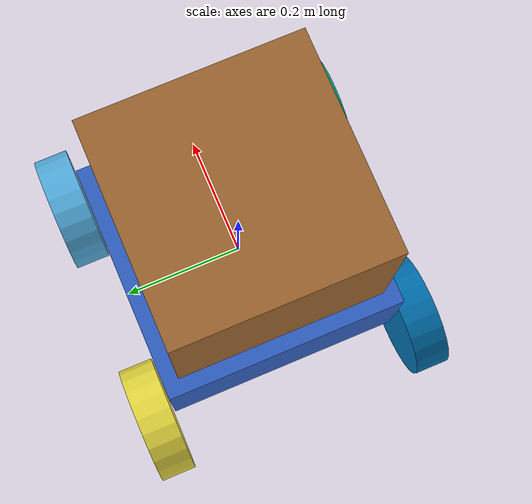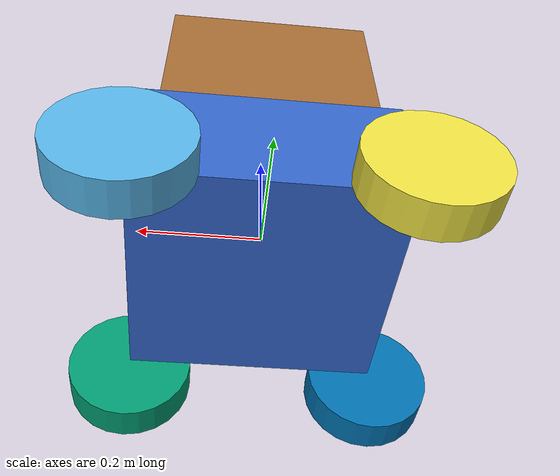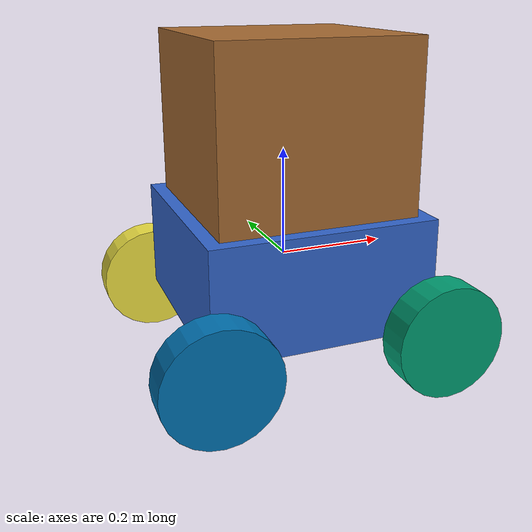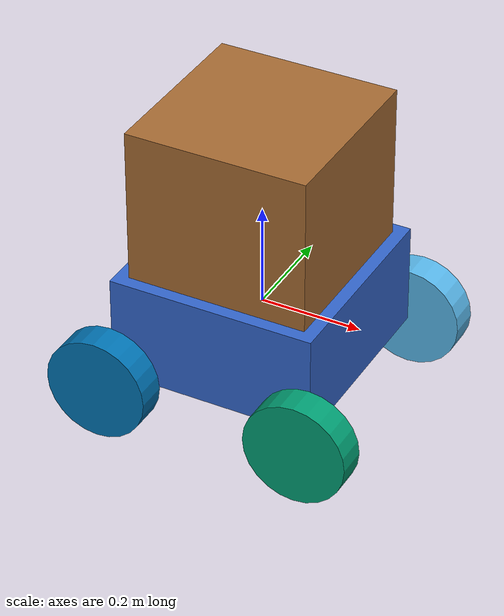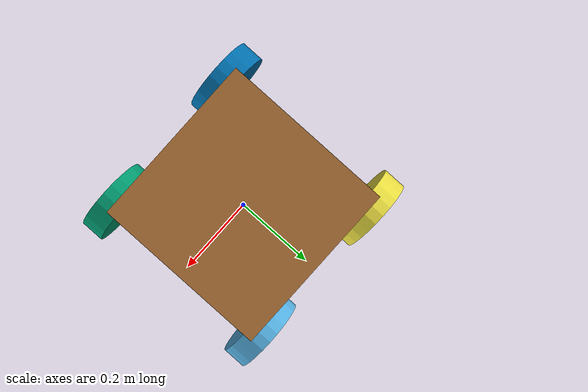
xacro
<?xml version="1.0"?>
<robot xmlns:xacro="http://www.ros.org/wiki/xacro" name="aplc_with_cargo">
  <xacro:include filename="aplc.urdf.xacro"/>
  <xacro:include filename="cargo_crate_macro.xacro"/>
  <!-- Override with the measured combined mass of the crate and payload (kg). -->
  <xacro:arg name="cargo_mass" default="1.0"/>
  <xacro:cargo_crate parent="base_link" xyz="0 0 ${height / 2}"
                     mass="$(arg cargo_mass)"/>
</robot>

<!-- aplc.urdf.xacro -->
<robot xmlns:xacro="http://www.ros.org/wiki/xacro"
       name="aplc">

  <xacro:property name="inch" value="0.0254"/>
  <xacro:property name="length" value="${16 * inch}"/>
  <xacro:property name="width" value="${16 * inch}"/>
  <xacro:property name="overall_height" value="${12 * inch}"/>
  <xacro:property name="wheel_radius" value="${4 * inch}"/>
  <!-- Wheel thickness and masses retained until measured values are available. -->
  <xacro:property name="wheel_width" value="0.06"/>
  <xacro:property name="chassis_mass" value="20.0"/>
  <xacro:property name="wheel_mass" value="1.0"/>
  <xacro:property name="wheel_gap" value="0.005"/>
  <xacro:property name="overall_width" value="${width + 2 * (wheel_width + wheel_gap)}"/>
  <!-- Axles level with chassis bottom: 4-inch ground clearance.
       base_link remains at the center of the chassis. -->
  <xacro:property name="height" value="${overall_height - wheel_radius}"/>
  <xacro:property name="wheel_x" value="${length / 2}"/>
  <xacro:property name="wheel_y" value="${(overall_width - wheel_width) / 2}"/>
  <xacro:property name="wheel_z" value="${-height / 2}"/>

  <!-- Main chassis -->
  <link name="base_link">
    <visual>
      <geometry>
        <box size="${length} ${width} ${height}"/>
      </geometry>
      <material name="blue">
        <color rgba="0.2 0.4 0.8 1"/>
      </material>
    </visual>

    <collision>
      <geometry>
        <box size="${length} ${width} ${height}"/>
      </geometry>
    </collision>

    <inertial>
      <mass value="${chassis_mass}"/>
      <inertia ixx="${chassis_mass * (width**2 + height**2) / 12}" ixy="0" ixz="0"
               iyy="${chassis_mass * (length**2 + height**2) / 12}" iyz="0"
               izz="${chassis_mass * (length**2 + width**2) / 12}"/>
    </inertial>
  </link>

  <!-- Reusable wheel definition -->
  <xacro:macro name="wheel" params="name x y">
    <link name="${name}_link">
      <visual>
        <origin rpy="${pi/2} 0 0"/>
        <geometry>
          <cylinder radius="${wheel_radius}"
                    length="${wheel_width}"/>
        </geometry>
      </visual>
      <collision>
        <origin rpy="${pi/2} 0 0"/>
        <geometry>
          <cylinder radius="${wheel_radius}"
                    length="${wheel_width}"/>
        </geometry>
      </collision>
      <inertial>
        <mass value="${wheel_mass}"/>
        <inertia ixx="${wheel_mass * (3 * wheel_radius**2 + wheel_width**2) / 12}" ixy="0" ixz="0"
                 iyy="${wheel_mass * wheel_radius**2 / 2}" iyz="0"
                 izz="${wheel_mass * (3 * wheel_radius**2 + wheel_width**2) / 12}"/>
      </inertial>
    </link>

    <joint name="${name}_joint" type="continuous">
      <parent link="base_link"/>
      <child link="${name}_link"/>
      <origin xyz="${x} ${y} ${wheel_z}"/>
      <axis xyz="0 1 0"/>
      <limit effort="10" velocity="20"/>
    </joint>
  </xacro:macro>

  <!-- Four wheels -->
  <xacro:wheel name="front_left"  x="${wheel_x}"  y="${wheel_y}"/>
  <xacro:wheel name="front_right" x="${wheel_x}"  y="${-wheel_y}"/>
  <xacro:wheel name="rear_left"   x="${-wheel_x}" y="${wheel_y}"/>
  <xacro:wheel name="rear_right"  x="${-wheel_x}" y="${-wheel_y}"/>

</robot>

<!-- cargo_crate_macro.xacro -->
<robot xmlns:xacro="http://www.ros.org/wiki/xacro" name="cargo_crate">
  <xacro:macro name="cargo_crate"
               params="parent xyz:='0 0 0' name:=cargo_crate mass:=1.0 crate_length:=0.3556 crate_width:=0.3556 crate_height:=0.3048">
    <link name="${name}_link">
      <visual>
        <origin xyz="0 0 ${crate_height / 2}"/>
        <geometry>
          <box size="${crate_length} ${crate_width} ${crate_height}"/>
        </geometry>
        <material name="${name}_brown">
          <color rgba="0.65 0.42 0.20 1"/>
        </material>
      </visual>
      <collision>
        <origin xyz="0 0 ${crate_height / 2}"/>
        <geometry>
          <box size="${crate_length} ${crate_width} ${crate_height}"/>
        </geometry>
      </collision>
      <inertial>
        <origin xyz="0 0 ${crate_height / 2}"/>
        <mass value="${mass}"/>
        <inertia ixx="${mass * (crate_width**2 + crate_height**2) / 12}"
                 ixy="0" ixz="0"
                 iyy="${mass * (crate_length**2 + crate_height**2) / 12}"
                 iyz="0"
                 izz="${mass * (crate_length**2 + crate_width**2) / 12}"/>
      </inertial>
    </link>
    <joint name="${name}_joint" type="fixed">
      <parent link="${parent}"/>
      <child link="${name}_link"/>
      <origin xyz="${xyz}"/>
    </joint>
  </xacro:macro>
</robot>
